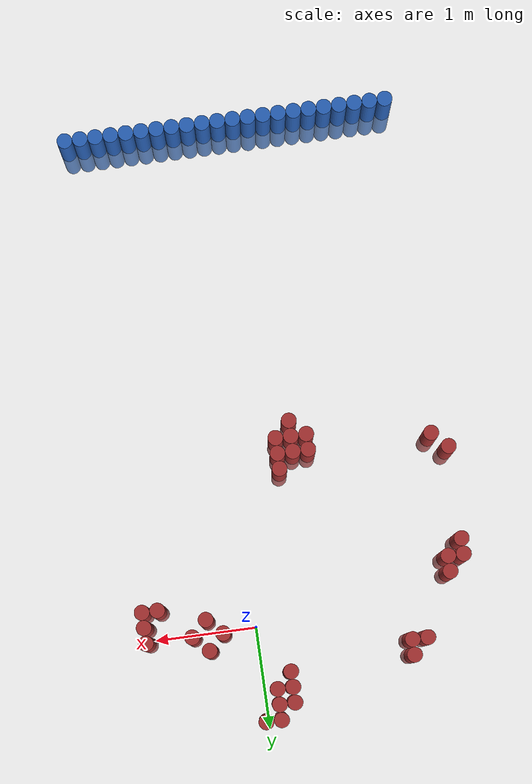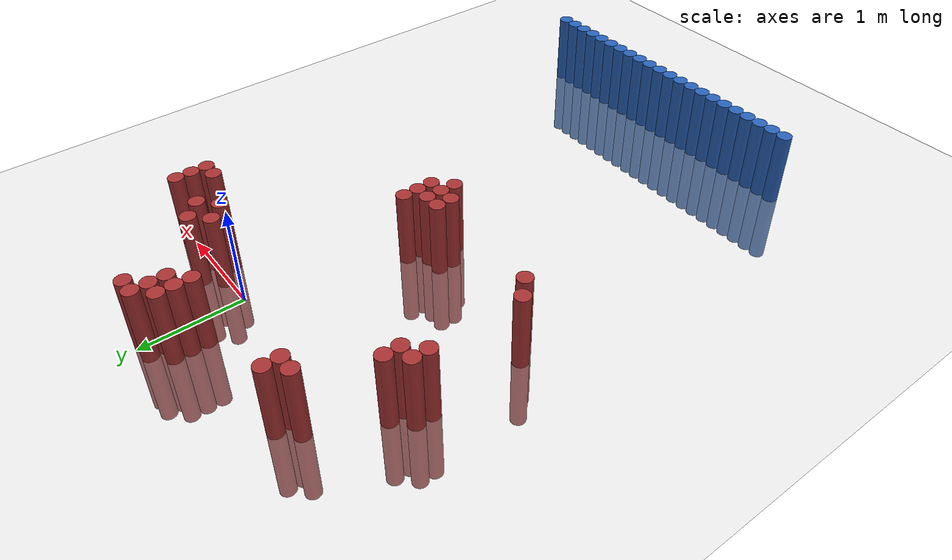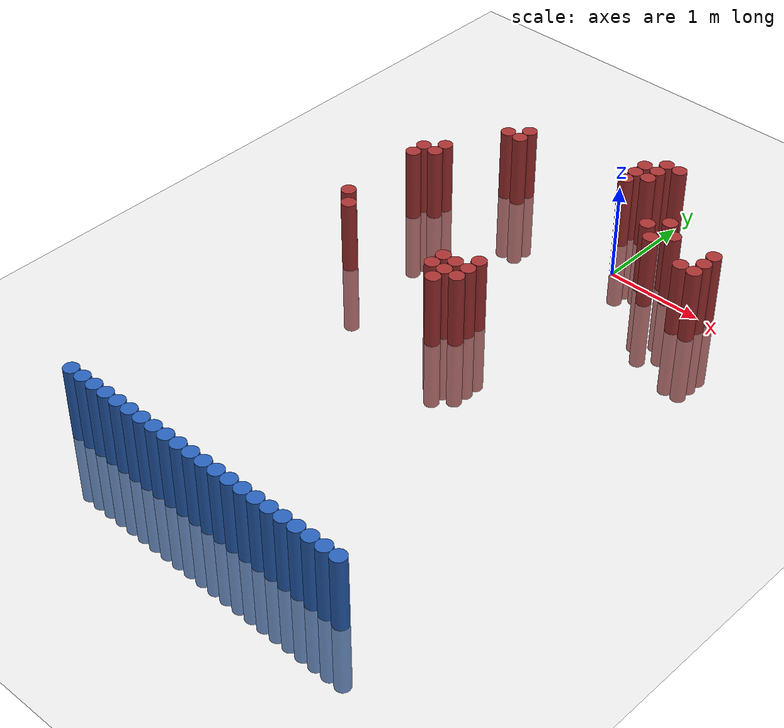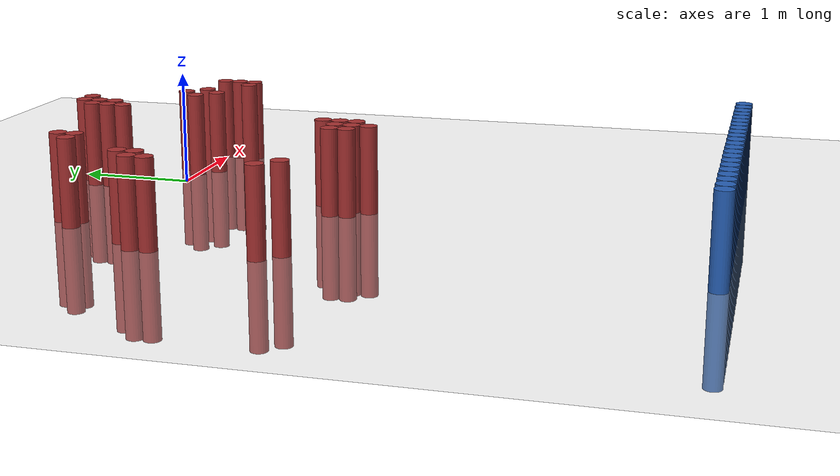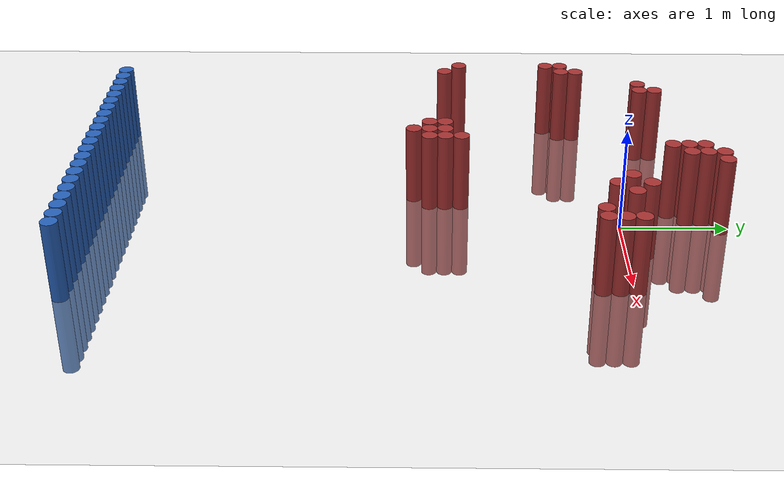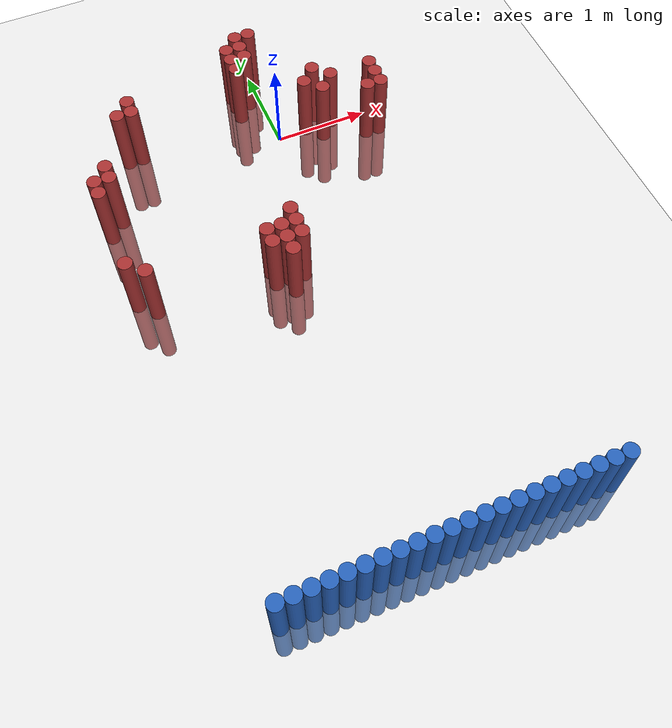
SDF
<sdf version="1.6">
 <world name="default">
  <model name="ground_plane">
   <static>1</static>
   <link name="link">
    <collision name="collision">
     <geometry><plane><normal>0 0 1</normal><size>100 100</size></plane></geometry>
     <surface><friction><ode><mu>100</mu><mu2>50</mu2></ode></friction></surface>
    </collision>
    <visual name="visual">
     <cast_shadows>0</cast_shadows>
     <geometry><plane><normal>0 0 1</normal><size>100 100</size></plane></geometry>
     <material>
      <script><uri>file://media/materials/scripts/gazebo.material</uri><name>Gazebo/Grey</name></script>
     </material>
    </visual>
   </link>
  </model>
  <model name="unit_cylinder_18">
   <static>1</static>
   <pose>1.225000 -4.925000 0.000000 0.000000 0.000000 0.000000</pose>
   <link name="link">
    <inertial>
     <mass>1</mass>
     <inertia><ixx>0.145833</ixx><ixy>0</ixy><ixz>0</ixz><iyy>0.145833</iyy><iyz>0</iyz><izz>0.125</izz></inertia>
    </inertial>
    <collision name="collision">
     <geometry><cylinder><radius>0.075000</radius><length>1.5</length></cylinder></geometry>
    </collision>
    <visual name="visual">
     <geometry><cylinder><radius>0.075000</radius><length>1.5</length></cylinder></geometry>
     <material>
      <ambient>0.152000 0.379000 0.720000 1</ambient>
      <diffuse>0.152000 0.379000 0.720000 1</diffuse>
     </material>
     <material>
      <script><name>Gazebo/Grey</name><uri>file://media/materials/scripts/gazebo.material</uri></script>
     </material>
    </visual>
   </link>
  </model>
  <model name="unit_cylinder_19">
   <static>1</static>
   <pose>1.075000 -4.925000 0.000000 0.000000 0.000000 0.000000</pose>
   <link name="link">
    <inertial>
     <mass>1</mass>
     <inertia><ixx>0.145833</ixx><ixy>0</ixy><ixz>0</ixz><iyy>0.145833</iyy><iyz>0</iyz><izz>0.125</izz></inertia>
    </inertial>
    <collision name="collision">
     <geometry><cylinder><radius>0.075000</radius><length>1.5</length></cylinder></geometry>
    </collision>
    <visual name="visual">
     <geometry><cylinder><radius>0.075000</radius><length>1.5</length></cylinder></geometry>
     <material>
      <ambient>0.152000 0.379000 0.720000 1</ambient>
      <diffuse>0.152000 0.379000 0.720000 1</diffuse>
     </material>
     <material>
      <script><name>Gazebo/Grey</name><uri>file://media/materials/scripts/gazebo.material</uri></script>
     </material>
    </visual>
   </link>
  </model>
  <model name="unit_cylinder_20">
   <static>1</static>
   <pose>0.925000 -4.925000 0.000000 0.000000 0.000000 0.000000</pose>
   <link name="link">
    <inertial>
     <mass>1</mass>
     <inertia><ixx>0.145833</ixx><ixy>0</ixy><ixz>0</ixz><iyy>0.145833</iyy><iyz>0</iyz><izz>0.125</izz></inertia>
    </inertial>
    <collision name="collision">
     <geometry><cylinder><radius>0.075000</radius><length>1.5</length></cylinder></geometry>
    </collision>
    <visual name="visual">
     <geometry><cylinder><radius>0.075000</radius><length>1.5</length></cylinder></geometry>
     <material>
      <ambient>0.152000 0.379000 0.720000 1</ambient>
      <diffuse>0.152000 0.379000 0.720000 1</diffuse>
     </material>
     <material>
      <script><name>Gazebo/Grey</name><uri>file://media/materials/scripts/gazebo.material</uri></script>
     </material>
    </visual>
   </link>
  </model>
  <model name="unit_cylinder_21">
   <static>1</static>
   <pose>0.775000 -4.925000 0.000000 0.000000 0.000000 0.000000</pose>
   <link name="link">
    <inertial>
     <mass>1</mass>
     <inertia><ixx>0.145833</ixx><ixy>0</ixy><ixz>0</ixz><iyy>0.145833</iyy><iyz>0</iyz><izz>0.125</izz></inertia>
    </inertial>
    <collision name="collision">
     <geometry><cylinder><radius>0.075000</radius><length>1.5</length></cylinder></geometry>
    </collision>
    <visual name="visual">
     <geometry><cylinder><radius>0.075000</radius><length>1.5</length></cylinder></geometry>
     <material>
      <ambient>0.152000 0.379000 0.720000 1</ambient>
      <diffuse>0.152000 0.379000 0.720000 1</diffuse>
     </material>
     <material>
      <script><name>Gazebo/Grey</name><uri>file://media/materials/scripts/gazebo.material</uri></script>
     </material>
    </visual>
   </link>
  </model>
  <model name="unit_cylinder_22">
   <static>1</static>
   <pose>0.625000 -4.925000 0.000000 0.000000 0.000000 0.000000</pose>
   <link name="link">
    <inertial>
     <mass>1</mass>
     <inertia><ixx>0.145833</ixx><ixy>0</ixy><ixz>0</ixz><iyy>0.145833</iyy><iyz>0</iyz><izz>0.125</izz></inertia>
    </inertial>
    <collision name="collision">
     <geometry><cylinder><radius>0.075000</radius><length>1.5</length></cylinder></geometry>
    </collision>
    <visual name="visual">
     <geometry><cylinder><radius>0.075000</radius><length>1.5</length></cylinder></geometry>
     <material>
      <ambient>0.152000 0.379000 0.720000 1</ambient>
      <diffuse>0.152000 0.379000 0.720000 1</diffuse>
     </material>
     <material>
      <script><name>Gazebo/Grey</name><uri>file://media/materials/scripts/gazebo.material</uri></script>
     </material>
    </visual>
   </link>
  </model>
  <model name="unit_cylinder_23">
   <static>1</static>
   <pose>0.475000 -4.925000 0.000000 0.000000 0.000000 0.000000</pose>
   <link name="link">
    <inertial>
     <mass>1</mass>
     <inertia><ixx>0.145833</ixx><ixy>0</ixy><ixz>0</ixz><iyy>0.145833</iyy><iyz>0</iyz><izz>0.125</izz></inertia>
    </inertial>
    <collision name="collision">
     <geometry><cylinder><radius>0.075000</radius><length>1.5</length></cylinder></geometry>
    </collision>
    <visual name="visual">
     <geometry><cylinder><radius>0.075000</radius><length>1.5</length></cylinder></geometry>
     <material>
      <ambient>0.152000 0.379000 0.720000 1</ambient>
      <diffuse>0.152000 0.379000 0.720000 1</diffuse>
     </material>
     <material>
      <script><name>Gazebo/Grey</name><uri>file://media/materials/scripts/gazebo.material</uri></script>
     </material>
    </visual>
   </link>
  </model>
  <model name="unit_cylinder_24">
   <static>1</static>
   <pose>0.325000 -4.925000 0.000000 0.000000 0.000000 0.000000</pose>
   <link name="link">
    <inertial>
     <mass>1</mass>
     <inertia><ixx>0.145833</ixx><ixy>0</ixy><ixz>0</ixz><iyy>0.145833</iyy><iyz>0</iyz><izz>0.125</izz></inertia>
    </inertial>
    <collision name="collision">
     <geometry><cylinder><radius>0.075000</radius><length>1.5</length></cylinder></geometry>
    </collision>
    <visual name="visual">
     <geometry><cylinder><radius>0.075000</radius><length>1.5</length></cylinder></geometry>
     <material>
      <ambient>0.152000 0.379000 0.720000 1</ambient>
      <diffuse>0.152000 0.379000 0.720000 1</diffuse>
     </material>
     <material>
      <script><name>Gazebo/Grey</name><uri>file://media/materials/scripts/gazebo.material</uri></script>
     </material>
    </visual>
   </link>
  </model>
  <model name="unit_cylinder_25">
   <static>1</static>
   <pose>0.175000 -4.925000 0.000000 0.000000 0.000000 0.000000</pose>
   <link name="link">
    <inertial>
     <mass>1</mass>
     <inertia><ixx>0.145833</ixx><ixy>0</ixy><ixz>0</ixz><iyy>0.145833</iyy><iyz>0</iyz><izz>0.125</izz></inertia>
    </inertial>
    <collision name="collision">
     <geometry><cylinder><radius>0.075000</radius><length>1.5</length></cylinder></geometry>
    </collision>
    <visual name="visual">
     <geometry><cylinder><radius>0.075000</radius><length>1.5</length></cylinder></geometry>
     <material>
      <ambient>0.152000 0.379000 0.720000 1</ambient>
      <diffuse>0.152000 0.379000 0.720000 1</diffuse>
     </material>
     <material>
      <script><name>Gazebo/Grey</name><uri>file://media/materials/scripts/gazebo.material</uri></script>
     </material>
    </visual>
   </link>
  </model>
  <model name="unit_cylinder_26">
   <static>1</static>
   <pose>0.025000 -4.925000 0.000000 0.000000 0.000000 0.000000</pose>
   <link name="link">
    <inertial>
     <mass>1</mass>
     <inertia><ixx>0.145833</ixx><ixy>0</ixy><ixz>0</ixz><iyy>0.145833</iyy><iyz>0</iyz><izz>0.125</izz></inertia>
    </inertial>
    <collision name="collision">
     <geometry><cylinder><radius>0.075000</radius><length>1.5</length></cylinder></geometry>
    </collision>
    <visual name="visual">
     <geometry><cylinder><radius>0.075000</radius><length>1.5</length></cylinder></geometry>
     <material>
      <ambient>0.152000 0.379000 0.720000 1</ambient>
      <diffuse>0.152000 0.379000 0.720000 1</diffuse>
     </material>
     <material>
      <script><name>Gazebo/Grey</name><uri>file://media/materials/scripts/gazebo.material</uri></script>
     </material>
    </visual>
   </link>
  </model>
  <model name="unit_cylinder_27">
   <static>1</static>
   <pose>-0.125000 -4.925000 0.000000 0.000000 0.000000 0.000000</pose>
   <link name="link">
    <inertial>
     <mass>1</mass>
     <inertia><ixx>0.145833</ixx><ixy>0</ixy><ixz>0</ixz><iyy>0.145833</iyy><iyz>0</iyz><izz>0.125</izz></inertia>
    </inertial>
    <collision name="collision">
     <geometry><cylinder><radius>0.075000</radius><length>1.5</length></cylinder></geometry>
    </collision>
    <visual name="visual">
     <geometry><cylinder><radius>0.075000</radius><length>1.5</length></cylinder></geometry>
     <material>
      <ambient>0.152000 0.379000 0.720000 1</ambient>
      <diffuse>0.152000 0.379000 0.720000 1</diffuse>
     </material>
     <material>
      <script><name>Gazebo/Grey</name><uri>file://media/materials/scripts/gazebo.material</uri></script>
     </material>
    </visual>
   </link>
  </model>
  <model name="unit_cylinder_28">
   <static>1</static>
   <pose>-0.275000 -4.925000 0.000000 0.000000 0.000000 0.000000</pose>
   <link name="link">
    <inertial>
     <mass>1</mass>
     <inertia><ixx>0.145833</ixx><ixy>0</ixy><ixz>0</ixz><iyy>0.145833</iyy><iyz>0</iyz><izz>0.125</izz></inertia>
    </inertial>
    <collision name="collision">
     <geometry><cylinder><radius>0.075000</radius><length>1.5</length></cylinder></geometry>
    </collision>
    <visual name="visual">
     <geometry><cylinder><radius>0.075000</radius><length>1.5</length></cylinder></geometry>
     <material>
      <ambient>0.152000 0.379000 0.720000 1</ambient>
      <diffuse>0.152000 0.379000 0.720000 1</diffuse>
     </material>
     <material>
      <script><name>Gazebo/Grey</name><uri>file://media/materials/scripts/gazebo.material</uri></script>
     </material>
    </visual>
   </link>
  </model>
  <model name="unit_cylinder_29">
   <static>1</static>
   <pose>-0.425000 -4.925000 0.000000 0.000000 0.000000 0.000000</pose>
   <link name="link">
    <inertial>
     <mass>1</mass>
     <inertia><ixx>0.145833</ixx><ixy>0</ixy><ixz>0</ixz><iyy>0.145833</iyy><iyz>0</iyz><izz>0.125</izz></inertia>
    </inertial>
    <collision name="collision">
     <geometry><cylinder><radius>0.075000</radius><length>1.5</length></cylinder></geometry>
    </collision>
    <visual name="visual">
     <geometry><cylinder><radius>0.075000</radius><length>1.5</length></cylinder></geometry>
     <material>
      <ambient>0.152000 0.379000 0.720000 1</ambient>
      <diffuse>0.152000 0.379000 0.720000 1</diffuse>
     </material>
     <material>
      <script><name>Gazebo/Grey</name><uri>file://media/materials/scripts/gazebo.material</uri></script>
     </material>
    </visual>
   </link>
  </model>
  <model name="unit_cylinder_30">
   <static>1</static>
   <pose>-0.575000 -4.925000 0.000000 0.000000 0.000000 0.000000</pose>
   <link name="link">
    <inertial>
     <mass>1</mass>
     <inertia><ixx>0.145833</ixx><ixy>0</ixy><ixz>0</ixz><iyy>0.145833</iyy><iyz>0</iyz><izz>0.125</izz></inertia>
    </inertial>
    <collision name="collision">
     <geometry><cylinder><radius>0.075000</radius><length>1.5</length></cylinder></geometry>
    </collision>
    <visual name="visual">
     <geometry><cylinder><radius>0.075000</radius><length>1.5</length></cylinder></geometry>
     <material>
      <ambient>0.152000 0.379000 0.720000 1</ambient>
      <diffuse>0.152000 0.379000 0.720000 1</diffuse>
     </material>
     <material>
      <script><name>Gazebo/Grey</name><uri>file://media/materials/scripts/gazebo.material</uri></script>
     </material>
    </visual>
   </link>
  </model>
  <model name="unit_cylinder_31">
   <static>1</static>
   <pose>-0.725000 -4.925000 0.000000 0.000000 0.000000 0.000000</pose>
   <link name="link">
    <inertial>
     <mass>1</mass>
     <inertia><ixx>0.145833</ixx><ixy>0</ixy><ixz>0</ixz><iyy>0.145833</iyy><iyz>0</iyz><izz>0.125</izz></inertia>
    </inertial>
    <collision name="collision">
     <geometry><cylinder><radius>0.075000</radius><length>1.5</length></cylinder></geometry>
    </collision>
    <visual name="visual">
     <geometry><cylinder><radius>0.075000</radius><length>1.5</length></cylinder></geometry>
     <material>
      <ambient>0.152000 0.379000 0.720000 1</ambient>
      <diffuse>0.152000 0.379000 0.720000 1</diffuse>
     </material>
     <material>
      <script><name>Gazebo/Grey</name><uri>file://media/materials/scripts/gazebo.material</uri></script>
     </material>
    </visual>
   </link>
  </model>
  <model name="unit_cylinder_32">
   <static>1</static>
   <pose>-0.875000 -4.925000 0.000000 0.000000 0.000000 0.000000</pose>
   <link name="link">
    <inertial>
     <mass>1</mass>
     <inertia><ixx>0.145833</ixx><ixy>0</ixy><ixz>0</ixz><iyy>0.145833</iyy><iyz>0</iyz><izz>0.125</izz></inertia>
    </inertial>
    <collision name="collision">
     <geometry><cylinder><radius>0.075000</radius><length>1.5</length></cylinder></geometry>
    </collision>
    <visual name="visual">
     <geometry><cylinder><radius>0.075000</radius><length>1.5</length></cylinder></geometry>
     <material>
      <ambient>0.152000 0.379000 0.720000 1</ambient>
      <diffuse>0.152000 0.379000 0.720000 1</diffuse>
     </material>
     <material>
      <script><name>Gazebo/Grey</name><uri>file://media/materials/scripts/gazebo.material</uri></script>
     </material>
    </visual>
   </link>
  </model>
  <model name="unit_cylinder_33">
   <static>1</static>
   <pose>-1.025000 -4.925000 0.000000 0.000000 0.000000 0.000000</pose>
   <link name="link">
    <inertial>
     <mass>1</mass>
     <inertia><ixx>0.145833</ixx><ixy>0</ixy><ixz>0</ixz><iyy>0.145833</iyy><iyz>0</iyz><izz>0.125</izz></inertia>
    </inertial>
    <collision name="collision">
     <geometry><cylinder><radius>0.075000</radius><length>1.5</length></cylinder></geometry>
    </collision>
    <visual name="visual">
     <geometry><cylinder><radius>0.075000</radius><length>1.5</length></cylinder></geometry>
     <material>
      <ambient>0.152000 0.379000 0.720000 1</ambient>
      <diffuse>0.152000 0.379000 0.720000 1</diffuse>
     </material>
     <material>
      <script><name>Gazebo/Grey</name><uri>file://media/materials/scripts/gazebo.material</uri></script>
     </material>
    </visual>
   </link>
  </model>
  <model name="unit_cylinder_34">
   <static>1</static>
   <pose>-1.175000 -4.925000 0.000000 0.000000 0.000000 0.000000</pose>
   <link name="link">
    <inertial>
     <mass>1</mass>
     <inertia><ixx>0.145833</ixx><ixy>0</ixy><ixz>0</ixz><iyy>0.145833</iyy><iyz>0</iyz><izz>0.125</izz></inertia>
    </inertial>
    <collision name="collision">
     <geometry><cylinder><radius>0.075000</radius><length>1.5</length></cylinder></geometry>
    </collision>
    <visual name="visual">
     <geometry><cylinder><radius>0.075000</radius><length>1.5</length></cylinder></geometry>
     <material>
      <ambient>0.152000 0.379000 0.720000 1</ambient>
      <diffuse>0.152000 0.379000 0.720000 1</diffuse>
     </material>
     <material>
      <script><name>Gazebo/Grey</name><uri>file://media/materials/scripts/gazebo.material</uri></script>
     </material>
    </visual>
   </link>
  </model>
  <model name="unit_cylinder_35">
   <static>1</static>
   <pose>-1.325000 -4.925000 0.000000 0.000000 0.000000 0.000000</pose>
   <link name="link">
    <inertial>
     <mass>1</mass>
     <inertia><ixx>0.145833</ixx><ixy>0</ixy><ixz>0</ixz><iyy>0.145833</iyy><iyz>0</iyz><izz>0.125</izz></inertia>
    </inertial>
    <collision name="collision">
     <geometry><cylinder><radius>0.075000</radius><length>1.5</length></cylinder></geometry>
    </collision>
    <visual name="visual">
     <geometry><cylinder><radius>0.075000</radius><length>1.5</length></cylinder></geometry>
     <material>
      <ambient>0.152000 0.379000 0.720000 1</ambient>
      <diffuse>0.152000 0.379000 0.720000 1</diffuse>
     </material>
     <material>
      <script><name>Gazebo/Grey</name><uri>file://media/materials/scripts/gazebo.material</uri></script>
     </material>
    </visual>
   </link>
  </model>
  <model name="unit_cylinder_36">
   <static>1</static>
   <pose>-1.475000 -4.925000 0.000000 0.000000 0.000000 0.000000</pose>
   <link name="link">
    <inertial>
     <mass>1</mass>
     <inertia><ixx>0.145833</ixx><ixy>0</ixy><ixz>0</ixz><iyy>0.145833</iyy><iyz>0</iyz><izz>0.125</izz></inertia>
    </inertial>
    <collision name="collision">
     <geometry><cylinder><radius>0.075000</radius><length>1.5</length></cylinder></geometry>
    </collision>
    <visual name="visual">
     <geometry><cylinder><radius>0.075000</radius><length>1.5</length></cylinder></geometry>
     <material>
      <ambient>0.152000 0.379000 0.720000 1</ambient>
      <diffuse>0.152000 0.379000 0.720000 1</diffuse>
     </material>
     <material>
      <script><name>Gazebo/Grey</name><uri>file://media/materials/scripts/gazebo.material</uri></script>
     </material>
    </visual>
   </link>
  </model>
  <model name="unit_cylinder_37">
   <static>1</static>
   <pose>-1.625000 -4.925000 0.000000 0.000000 0.000000 0.000000</pose>
   <link name="link">
    <inertial>
     <mass>1</mass>
     <inertia><ixx>0.145833</ixx><ixy>0</ixy><ixz>0</ixz><iyy>0.145833</iyy><iyz>0</iyz><izz>0.125</izz></inertia>
    </inertial>
    <collision name="collision">
     <geometry><cylinder><radius>0.075000</radius><length>1.5</length></cylinder></geometry>
    </collision>
    <visual name="visual">
     <geometry><cylinder><radius>0.075000</radius><length>1.5</length></cylinder></geometry>
     <material>
      <ambient>0.152000 0.379000 0.720000 1</ambient>
      <diffuse>0.152000 0.379000 0.720000 1</diffuse>
     </material>
     <material>
      <script><name>Gazebo/Grey</name><uri>file://media/materials/scripts/gazebo.material</uri></script>
     </material>
    </visual>
   </link>
  </model>
  <model name="unit_cylinder_38">
   <static>1</static>
   <pose>-1.775000 -4.925000 0.000000 0.000000 0.000000 0.000000</pose>
   <link name="link">
    <inertial>
     <mass>1</mass>
     <inertia><ixx>0.145833</ixx><ixy>0</ixy><ixz>0</ixz><iyy>0.145833</iyy><iyz>0</iyz><izz>0.125</izz></inertia>
    </inertial>
    <collision name="collision">
     <geometry><cylinder><radius>0.075000</radius><length>1.5</length></cylinder></geometry>
    </collision>
    <visual name="visual">
     <geometry><cylinder><radius>0.075000</radius><length>1.5</length></cylinder></geometry>
     <material>
      <ambient>0.152000 0.379000 0.720000 1</ambient>
      <diffuse>0.152000 0.379000 0.720000 1</diffuse>
     </material>
     <material>
      <script><name>Gazebo/Grey</name><uri>file://media/materials/scripts/gazebo.material</uri></script>
     </material>
    </visual>
   </link>
  </model>
  <model name="unit_cylinder_39">
   <static>1</static>
   <pose>-1.925000 -4.925000 0.000000 0.000000 0.000000 0.000000</pose>
   <link name="link">
    <inertial>
     <mass>1</mass>
     <inertia><ixx>0.145833</ixx><ixy>0</ixy><ixz>0</ixz><iyy>0.145833</iyy><iyz>0</iyz><izz>0.125</izz></inertia>
    </inertial>
    <collision name="collision">
     <geometry><cylinder><radius>0.075000</radius><length>1.5</length></cylinder></geometry>
    </collision>
    <visual name="visual">
     <geometry><cylinder><radius>0.075000</radius><length>1.5</length></cylinder></geometry>
     <material>
      <ambient>0.152000 0.379000 0.720000 1</ambient>
      <diffuse>0.152000 0.379000 0.720000 1</diffuse>
     </material>
     <material>
      <script><name>Gazebo/Grey</name><uri>file://media/materials/scripts/gazebo.material</uri></script>
     </material>
    </visual>
   </link>
  </model>
  <model name="unit_cylinder_318">
   <static>1</static>
   <pose>-2.075000 -1.475000 0.000000 0.000000 0.000000 0.000000</pose>
   <link name="link">
    <inertial>
     <mass>1</mass>
     <inertia><ixx>0.145833</ixx><ixy>0</ixy><ixz>0</ixz><iyy>0.145833</iyy><iyz>0</iyz><izz>0.125</izz></inertia>
    </inertial>
    <collision name="collision">
     <geometry><cylinder><radius>0.075000</radius><length>1.5</length></cylinder></geometry>
    </collision>
    <visual name="visual">
     <geometry><cylinder><radius>0.075000</radius><length>1.5</length></cylinder></geometry>
     <material>
      <ambient>0.648000 0.192000 0.192000 1</ambient>
      <diffuse>0.648000 0.192000 0.192000 1</diffuse>
     </material>
     <material>
      <script><name>Gazebo/Grey</name><uri>file://media/materials/scripts/gazebo.material</uri></script>
     </material>
    </visual>
   </link>
  </model>
  <model name="unit_cylinder_319">
   <static>1</static>
   <pose>-2.075000 -0.575000 0.000000 0.000000 0.000000 0.000000</pose>
   <link name="link">
    <inertial>
     <mass>1</mass>
     <inertia><ixx>0.145833</ixx><ixy>0</ixy><ixz>0</ixz><iyy>0.145833</iyy><iyz>0</iyz><izz>0.125</izz></inertia>
    </inertial>
    <collision name="collision">
     <geometry><cylinder><radius>0.075000</radius><length>1.5</length></cylinder></geometry>
    </collision>
    <visual name="visual">
     <geometry><cylinder><radius>0.075000</radius><length>1.5</length></cylinder></geometry>
     <material>
      <ambient>0.648000 0.192000 0.192000 1</ambient>
      <diffuse>0.648000 0.192000 0.192000 1</diffuse>
     </material>
     <material>
      <script><name>Gazebo/Grey</name><uri>file://media/materials/scripts/gazebo.material</uri></script>
     </material>
    </visual>
   </link>
  </model>
  <model name="unit_cylinder_320">
   <static>1</static>
   <pose>-2.075000 -0.425000 0.000000 0.000000 0.000000 0.000000</pose>
   <link name="link">
    <inertial>
     <mass>1</mass>
     <inertia><ixx>0.145833</ixx><ixy>0</ixy><ixz>0</ixz><iyy>0.145833</iyy><iyz>0</iyz><izz>0.125</izz></inertia>
    </inertial>
    <collision name="collision">
     <geometry><cylinder><radius>0.075000</radius><length>1.5</length></cylinder></geometry>
    </collision>
    <visual name="visual">
     <geometry><cylinder><radius>0.075000</radius><length>1.5</length></cylinder></geometry>
     <material>
      <ambient>0.648000 0.192000 0.192000 1</ambient>
      <diffuse>0.648000 0.192000 0.192000 1</diffuse>
     </material>
     <material>
      <script><name>Gazebo/Grey</name><uri>file://media/materials/scripts/gazebo.material</uri></script>
     </material>
    </visual>
   </link>
  </model>
  <model name="unit_cylinder_321">
   <static>1</static>
   <pose>-1.925000 -1.625000 0.000000 0.000000 0.000000 0.000000</pose>
   <link name="link">
    <inertial>
     <mass>1</mass>
     <inertia><ixx>0.145833</ixx><ixy>0</ixy><ixz>0</ixz><iyy>0.145833</iyy><iyz>0</iyz><izz>0.125</izz></inertia>
    </inertial>
    <collision name="collision">
     <geometry><cylinder><radius>0.075000</radius><length>1.5</length></cylinder></geometry>
    </collision>
    <visual name="visual">
     <geometry><cylinder><radius>0.075000</radius><length>1.5</length></cylinder></geometry>
     <material>
      <ambient>0.648000 0.192000 0.192000 1</ambient>
      <diffuse>0.648000 0.192000 0.192000 1</diffuse>
     </material>
     <material>
      <script><name>Gazebo/Grey</name><uri>file://media/materials/scripts/gazebo.material</uri></script>
     </material>
    </visual>
   </link>
  </model>
  <model name="unit_cylinder_322">
   <static>1</static>
   <pose>-1.925000 -0.425000 0.000000 0.000000 0.000000 0.000000</pose>
   <link name="link">
    <inertial>
     <mass>1</mass>
     <inertia><ixx>0.145833</ixx><ixy>0</ixy><ixz>0</ixz><iyy>0.145833</iyy><iyz>0</iyz><izz>0.125</izz></inertia>
    </inertial>
    <collision name="collision">
     <geometry><cylinder><radius>0.075000</radius><length>1.5</length></cylinder></geometry>
    </collision>
    <visual name="visual">
     <geometry><cylinder><radius>0.075000</radius><length>1.5</length></cylinder></geometry>
     <material>
      <ambient>0.648000 0.192000 0.192000 1</ambient>
      <diffuse>0.648000 0.192000 0.192000 1</diffuse>
     </material>
     <material>
      <script><name>Gazebo/Grey</name><uri>file://media/materials/scripts/gazebo.material</uri></script>
     </material>
    </visual>
   </link>
  </model>
  <model name="unit_cylinder_323">
   <static>1</static>
   <pose>-1.925000 -0.275000 0.000000 0.000000 0.000000 0.000000</pose>
   <link name="link">
    <inertial>
     <mass>1</mass>
     <inertia><ixx>0.145833</ixx><ixy>0</ixy><ixz>0</ixz><iyy>0.145833</iyy><iyz>0</iyz><izz>0.125</izz></inertia>
    </inertial>
    <collision name="collision">
     <geometry><cylinder><radius>0.075000</radius><length>1.5</length></cylinder></geometry>
    </collision>
    <visual name="visual">
     <geometry><cylinder><radius>0.075000</radius><length>1.5</length></cylinder></geometry>
     <material>
      <ambient>0.648000 0.192000 0.192000 1</ambient>
      <diffuse>0.648000 0.192000 0.192000 1</diffuse>
     </material>
     <material>
      <script><name>Gazebo/Grey</name><uri>file://media/materials/scripts/gazebo.material</uri></script>
     </material>
    </visual>
   </link>
  </model>
  <model name="unit_cylinder_324">
   <static>1</static>
   <pose>-1.625000 0.325000 0.000000 0.000000 0.000000 0.000000</pose>
   <link name="link">
    <inertial>
     <mass>1</mass>
     <inertia><ixx>0.145833</ixx><ixy>0</ixy><ixz>0</ixz><iyy>0.145833</iyy><iyz>0</iyz><izz>0.125</izz></inertia>
    </inertial>
    <collision name="collision">
     <geometry><cylinder><radius>0.075000</radius><length>1.5</length></cylinder></geometry>
    </collision>
    <visual name="visual">
     <geometry><cylinder><radius>0.075000</radius><length>1.5</length></cylinder></geometry>
     <material>
      <ambient>0.648000 0.192000 0.192000 1</ambient>
      <diffuse>0.648000 0.192000 0.192000 1</diffuse>
     </material>
     <material>
      <script><name>Gazebo/Grey</name><uri>file://media/materials/scripts/gazebo.material</uri></script>
     </material>
    </visual>
   </link>
  </model>
  <model name="unit_cylinder_325">
   <static>1</static>
   <pose>-1.475000 0.325000 0.000000 0.000000 0.000000 0.000000</pose>
   <link name="link">
    <inertial>
     <mass>1</mass>
     <inertia><ixx>0.145833</ixx><ixy>0</ixy><ixz>0</ixz><iyy>0.145833</iyy><iyz>0</iyz><izz>0.125</izz></inertia>
    </inertial>
    <collision name="collision">
     <geometry><cylinder><radius>0.075000</radius><length>1.5</length></cylinder></geometry>
    </collision>
    <visual name="visual">
     <geometry><cylinder><radius>0.075000</radius><length>1.5</length></cylinder></geometry>
     <material>
      <ambient>0.648000 0.192000 0.192000 1</ambient>
      <diffuse>0.648000 0.192000 0.192000 1</diffuse>
     </material>
     <material>
      <script><name>Gazebo/Grey</name><uri>file://media/materials/scripts/gazebo.material</uri></script>
     </material>
    </visual>
   </link>
  </model>
  <model name="unit_cylinder_326">
   <static>1</static>
   <pose>-1.475000 0.475000 0.000000 0.000000 0.000000 0.000000</pose>
   <link name="link">
    <inertial>
     <mass>1</mass>
     <inertia><ixx>0.145833</ixx><ixy>0</ixy><ixz>0</ixz><iyy>0.145833</iyy><iyz>0</iyz><izz>0.125</izz></inertia>
    </inertial>
    <collision name="collision">
     <geometry><cylinder><radius>0.075000</radius><length>1.5</length></cylinder></geometry>
    </collision>
    <visual name="visual">
     <geometry><cylinder><radius>0.075000</radius><length>1.5</length></cylinder></geometry>
     <material>
      <ambient>0.648000 0.192000 0.192000 1</ambient>
      <diffuse>0.648000 0.192000 0.192000 1</diffuse>
     </material>
     <material>
      <script><name>Gazebo/Grey</name><uri>file://media/materials/scripts/gazebo.material</uri></script>
     </material>
    </visual>
   </link>
  </model>
  <model name="unit_cylinder_331">
   <static>1</static>
   <pose>-0.725000 -1.775000 0.000000 0.000000 0.000000 0.000000</pose>
   <link name="link">
    <inertial>
     <mass>1</mass>
     <inertia><ixx>0.145833</ixx><ixy>0</ixy><ixz>0</ixz><iyy>0.145833</iyy><iyz>0</iyz><izz>0.125</izz></inertia>
    </inertial>
    <collision name="collision">
     <geometry><cylinder><radius>0.075000</radius><length>1.5</length></cylinder></geometry>
    </collision>
    <visual name="visual">
     <geometry><cylinder><radius>0.075000</radius><length>1.5</length></cylinder></geometry>
     <material>
      <ambient>0.648000 0.192000 0.192000 1</ambient>
      <diffuse>0.648000 0.192000 0.192000 1</diffuse>
     </material>
     <material>
      <script><name>Gazebo/Grey</name><uri>file://media/materials/scripts/gazebo.material</uri></script>
     </material>
    </visual>
   </link>
  </model>
  <model name="unit_cylinder_332">
   <static>1</static>
   <pose>-0.725000 -1.625000 0.000000 0.000000 0.000000 0.000000</pose>
   <link name="link">
    <inertial>
     <mass>1</mass>
     <inertia><ixx>0.145833</ixx><ixy>0</ixy><ixz>0</ixz><iyy>0.145833</iyy><iyz>0</iyz><izz>0.125</izz></inertia>
    </inertial>
    <collision name="collision">
     <geometry><cylinder><radius>0.075000</radius><length>1.5</length></cylinder></geometry>
    </collision>
    <visual name="visual">
     <geometry><cylinder><radius>0.075000</radius><length>1.5</length></cylinder></geometry>
     <material>
      <ambient>0.648000 0.192000 0.192000 1</ambient>
      <diffuse>0.648000 0.192000 0.192000 1</diffuse>
     </material>
     <material>
      <script><name>Gazebo/Grey</name><uri>file://media/materials/scripts/gazebo.material</uri></script>
     </material>
    </visual>
   </link>
  </model>
  <model name="unit_cylinder_334">
   <static>1</static>
   <pose>-0.575000 -1.925000 0.000000 0.000000 0.000000 0.000000</pose>
   <link name="link">
    <inertial>
     <mass>1</mass>
     <inertia><ixx>0.145833</ixx><ixy>0</ixy><ixz>0</ixz><iyy>0.145833</iyy><iyz>0</iyz><izz>0.125</izz></inertia>
    </inertial>
    <collision name="collision">
     <geometry><cylinder><radius>0.075000</radius><length>1.5</length></cylinder></geometry>
    </collision>
    <visual name="visual">
     <geometry><cylinder><radius>0.075000</radius><length>1.5</length></cylinder></geometry>
     <material>
      <ambient>0.648000 0.192000 0.192000 1</ambient>
      <diffuse>0.648000 0.192000 0.192000 1</diffuse>
     </material>
     <material>
      <script><name>Gazebo/Grey</name><uri>file://media/materials/scripts/gazebo.material</uri></script>
     </material>
    </visual>
   </link>
  </model>
  <model name="unit_cylinder_335">
   <static>1</static>
   <pose>-0.575000 -1.775000 0.000000 0.000000 0.000000 0.000000</pose>
   <link name="link">
    <inertial>
     <mass>1</mass>
     <inertia><ixx>0.145833</ixx><ixy>0</ixy><ixz>0</ixz><iyy>0.145833</iyy><iyz>0</iyz><izz>0.125</izz></inertia>
    </inertial>
    <collision name="collision">
     <geometry><cylinder><radius>0.075000</radius><length>1.5</length></cylinder></geometry>
    </collision>
    <visual name="visual">
     <geometry><cylinder><radius>0.075000</radius><length>1.5</length></cylinder></geometry>
     <material>
      <ambient>0.648000 0.192000 0.192000 1</ambient>
      <diffuse>0.648000 0.192000 0.192000 1</diffuse>
     </material>
     <material>
      <script><name>Gazebo/Grey</name><uri>file://media/materials/scripts/gazebo.material</uri></script>
     </material>
    </visual>
   </link>
  </model>
  <model name="unit_cylinder_336">
   <static>1</static>
   <pose>-0.575000 -1.625000 0.000000 0.000000 0.000000 0.000000</pose>
   <link name="link">
    <inertial>
     <mass>1</mass>
     <inertia><ixx>0.145833</ixx><ixy>0</ixy><ixz>0</ixz><iyy>0.145833</iyy><iyz>0</iyz><izz>0.125</izz></inertia>
    </inertial>
    <collision name="collision">
     <geometry><cylinder><radius>0.075000</radius><length>1.5</length></cylinder></geometry>
    </collision>
    <visual name="visual">
     <geometry><cylinder><radius>0.075000</radius><length>1.5</length></cylinder></geometry>
     <material>
      <ambient>0.648000 0.192000 0.192000 1</ambient>
      <diffuse>0.648000 0.192000 0.192000 1</diffuse>
     </material>
     <material>
      <script><name>Gazebo/Grey</name><uri>file://media/materials/scripts/gazebo.material</uri></script>
     </material>
    </visual>
   </link>
  </model>
  <model name="unit_cylinder_342">
   <static>1</static>
   <pose>-0.425000 -1.775000 0.000000 0.000000 0.000000 0.000000</pose>
   <link name="link">
    <inertial>
     <mass>1</mass>
     <inertia><ixx>0.145833</ixx><ixy>0</ixy><ixz>0</ixz><iyy>0.145833</iyy><iyz>0</iyz><izz>0.125</izz></inertia>
    </inertial>
    <collision name="collision">
     <geometry><cylinder><radius>0.075000</radius><length>1.5</length></cylinder></geometry>
    </collision>
    <visual name="visual">
     <geometry><cylinder><radius>0.075000</radius><length>1.5</length></cylinder></geometry>
     <material>
      <ambient>0.648000 0.192000 0.192000 1</ambient>
      <diffuse>0.648000 0.192000 0.192000 1</diffuse>
     </material>
     <material>
      <script><name>Gazebo/Grey</name><uri>file://media/materials/scripts/gazebo.material</uri></script>
     </material>
    </visual>
   </link>
  </model>
  <model name="unit_cylinder_343">
   <static>1</static>
   <pose>-0.425000 -1.625000 0.000000 0.000000 0.000000 0.000000</pose>
   <link name="link">
    <inertial>
     <mass>1</mass>
     <inertia><ixx>0.145833</ixx><ixy>0</ixy><ixz>0</ixz><iyy>0.145833</iyy><iyz>0</iyz><izz>0.125</izz></inertia>
    </inertial>
    <collision name="collision">
     <geometry><cylinder><radius>0.075000</radius><length>1.5</length></cylinder></geometry>
    </collision>
    <visual name="visual">
     <geometry><cylinder><radius>0.075000</radius><length>1.5</length></cylinder></geometry>
     <material>
      <ambient>0.648000 0.192000 0.192000 1</ambient>
      <diffuse>0.648000 0.192000 0.192000 1</diffuse>
     </material>
     <material>
      <script><name>Gazebo/Grey</name><uri>file://media/materials/scripts/gazebo.material</uri></script>
     </material>
    </visual>
   </link>
  </model>
  <model name="unit_cylinder_344">
   <static>1</static>
   <pose>-0.425000 -1.475000 0.000000 0.000000 0.000000 0.000000</pose>
   <link name="link">
    <inertial>
     <mass>1</mass>
     <inertia><ixx>0.145833</ixx><ixy>0</ixy><ixz>0</ixz><iyy>0.145833</iyy><iyz>0</iyz><izz>0.125</izz></inertia>
    </inertial>
    <collision name="collision">
     <geometry><cylinder><radius>0.075000</radius><length>1.5</length></cylinder></geometry>
    </collision>
    <visual name="visual">
     <geometry><cylinder><radius>0.075000</radius><length>1.5</length></cylinder></geometry>
     <material>
      <ambient>0.648000 0.192000 0.192000 1</ambient>
      <diffuse>0.648000 0.192000 0.192000 1</diffuse>
     </material>
     <material>
      <script><name>Gazebo/Grey</name><uri>file://media/materials/scripts/gazebo.material</uri></script>
     </material>
    </visual>
   </link>
  </model>
  <model name="unit_cylinder_350">
   <static>1</static>
   <pose>-0.275000 0.475000 0.000000 0.000000 0.000000 0.000000</pose>
   <link name="link">
    <inertial>
     <mass>1</mass>
     <inertia><ixx>0.145833</ixx><ixy>0</ixy><ixz>0</ixz><iyy>0.145833</iyy><iyz>0</iyz><izz>0.125</izz></inertia>
    </inertial>
    <collision name="collision">
     <geometry><cylinder><radius>0.075000</radius><length>1.5</length></cylinder></geometry>
    </collision>
    <visual name="visual">
     <geometry><cylinder><radius>0.075000</radius><length>1.5</length></cylinder></geometry>
     <material>
      <ambient>0.648000 0.192000 0.192000 1</ambient>
      <diffuse>0.648000 0.192000 0.192000 1</diffuse>
     </material>
     <material>
      <script><name>Gazebo/Grey</name><uri>file://media/materials/scripts/gazebo.material</uri></script>
     </material>
    </visual>
   </link>
  </model>
  <model name="unit_cylinder_351">
   <static>1</static>
   <pose>-0.275000 0.625000 0.000000 0.000000 0.000000 0.000000</pose>
   <link name="link">
    <inertial>
     <mass>1</mass>
     <inertia><ixx>0.145833</ixx><ixy>0</ixy><ixz>0</ixz><iyy>0.145833</iyy><iyz>0</iyz><izz>0.125</izz></inertia>
    </inertial>
    <collision name="collision">
     <geometry><cylinder><radius>0.075000</radius><length>1.5</length></cylinder></geometry>
    </collision>
    <visual name="visual">
     <geometry><cylinder><radius>0.075000</radius><length>1.5</length></cylinder></geometry>
     <material>
      <ambient>0.648000 0.192000 0.192000 1</ambient>
      <diffuse>0.648000 0.192000 0.192000 1</diffuse>
     </material>
     <material>
      <script><name>Gazebo/Grey</name><uri>file://media/materials/scripts/gazebo.material</uri></script>
     </material>
    </visual>
   </link>
  </model>
  <model name="unit_cylinder_352">
   <static>1</static>
   <pose>-0.275000 0.775000 0.000000 0.000000 0.000000 0.000000</pose>
   <link name="link">
    <inertial>
     <mass>1</mass>
     <inertia><ixx>0.145833</ixx><ixy>0</ixy><ixz>0</ixz><iyy>0.145833</iyy><iyz>0</iyz><izz>0.125</izz></inertia>
    </inertial>
    <collision name="collision">
     <geometry><cylinder><radius>0.075000</radius><length>1.5</length></cylinder></geometry>
    </collision>
    <visual name="visual">
     <geometry><cylinder><radius>0.075000</radius><length>1.5</length></cylinder></geometry>
     <material>
      <ambient>0.648000 0.192000 0.192000 1</ambient>
      <diffuse>0.648000 0.192000 0.192000 1</diffuse>
     </material>
     <material>
      <script><name>Gazebo/Grey</name><uri>file://media/materials/scripts/gazebo.material</uri></script>
     </material>
    </visual>
   </link>
  </model>
  <model name="unit_cylinder_356">
   <static>1</static>
   <pose>-0.125000 0.625000 0.000000 0.000000 0.000000 0.000000</pose>
   <link name="link">
    <inertial>
     <mass>1</mass>
     <inertia><ixx>0.145833</ixx><ixy>0</ixy><ixz>0</ixz><iyy>0.145833</iyy><iyz>0</iyz><izz>0.125</izz></inertia>
    </inertial>
    <collision name="collision">
     <geometry><cylinder><radius>0.075000</radius><length>1.5</length></cylinder></geometry>
    </collision>
    <visual name="visual">
     <geometry><cylinder><radius>0.075000</radius><length>1.5</length></cylinder></geometry>
     <material>
      <ambient>0.648000 0.192000 0.192000 1</ambient>
      <diffuse>0.648000 0.192000 0.192000 1</diffuse>
     </material>
     <material>
      <script><name>Gazebo/Grey</name><uri>file://media/materials/scripts/gazebo.material</uri></script>
     </material>
    </visual>
   </link>
  </model>
  <model name="unit_cylinder_357">
   <static>1</static>
   <pose>-0.125000 0.775000 0.000000 0.000000 0.000000 0.000000</pose>
   <link name="link">
    <inertial>
     <mass>1</mass>
     <inertia><ixx>0.145833</ixx><ixy>0</ixy><ixz>0</ixz><iyy>0.145833</iyy><iyz>0</iyz><izz>0.125</izz></inertia>
    </inertial>
    <collision name="collision">
     <geometry><cylinder><radius>0.075000</radius><length>1.5</length></cylinder></geometry>
    </collision>
    <visual name="visual">
     <geometry><cylinder><radius>0.075000</radius><length>1.5</length></cylinder></geometry>
     <material>
      <ambient>0.648000 0.192000 0.192000 1</ambient>
      <diffuse>0.648000 0.192000 0.192000 1</diffuse>
     </material>
     <material>
      <script><name>Gazebo/Grey</name><uri>file://media/materials/scripts/gazebo.material</uri></script>
     </material>
    </visual>
   </link>
  </model>
  <model name="unit_cylinder_358">
   <static>1</static>
   <pose>-0.125000 0.925000 0.000000 0.000000 0.000000 0.000000</pose>
   <link name="link">
    <inertial>
     <mass>1</mass>
     <inertia><ixx>0.145833</ixx><ixy>0</ixy><ixz>0</ixz><iyy>0.145833</iyy><iyz>0</iyz><izz>0.125</izz></inertia>
    </inertial>
    <collision name="collision">
     <geometry><cylinder><radius>0.075000</radius><length>1.5</length></cylinder></geometry>
    </collision>
    <visual name="visual">
     <geometry><cylinder><radius>0.075000</radius><length>1.5</length></cylinder></geometry>
     <material>
      <ambient>0.648000 0.192000 0.192000 1</ambient>
      <diffuse>0.648000 0.192000 0.192000 1</diffuse>
     </material>
     <material>
      <script><name>Gazebo/Grey</name><uri>file://media/materials/scripts/gazebo.material</uri></script>
     </material>
    </visual>
   </link>
  </model>
  <model name="unit_cylinder_364">
   <static>1</static>
   <pose>0.025000 0.925000 0.000000 0.000000 0.000000 0.000000</pose>
   <link name="link">
    <inertial>
     <mass>1</mass>
     <inertia><ixx>0.145833</ixx><ixy>0</ixy><ixz>0</ixz><iyy>0.145833</iyy><iyz>0</iyz><izz>0.125</izz></inertia>
    </inertial>
    <collision name="collision">
     <geometry><cylinder><radius>0.075000</radius><length>1.5</length></cylinder></geometry>
    </collision>
    <visual name="visual">
     <geometry><cylinder><radius>0.075000</radius><length>1.5</length></cylinder></geometry>
     <material>
      <ambient>0.648000 0.192000 0.192000 1</ambient>
      <diffuse>0.648000 0.192000 0.192000 1</diffuse>
     </material>
     <material>
      <script><name>Gazebo/Grey</name><uri>file://media/materials/scripts/gazebo.material</uri></script>
     </material>
    </visual>
   </link>
  </model>
  <model name="unit_cylinder_371">
   <static>1</static>
   <pose>0.325000 0.025000 0.000000 0.000000 0.000000 0.000000</pose>
   <link name="link">
    <inertial>
     <mass>1</mass>
     <inertia><ixx>0.145833</ixx><ixy>0</ixy><ixz>0</ixz><iyy>0.145833</iyy><iyz>0</iyz><izz>0.125</izz></inertia>
    </inertial>
    <collision name="collision">
     <geometry><cylinder><radius>0.075000</radius><length>1.5</length></cylinder></geometry>
    </collision>
    <visual name="visual">
     <geometry><cylinder><radius>0.075000</radius><length>1.5</length></cylinder></geometry>
     <material>
      <ambient>0.648000 0.192000 0.192000 1</ambient>
      <diffuse>0.648000 0.192000 0.192000 1</diffuse>
     </material>
     <material>
      <script><name>Gazebo/Grey</name><uri>file://media/materials/scripts/gazebo.material</uri></script>
     </material>
    </visual>
   </link>
  </model>
  <model name="unit_cylinder_378">
   <static>1</static>
   <pose>0.475000 -0.125000 0.000000 0.000000 0.000000 0.000000</pose>
   <link name="link">
    <inertial>
     <mass>1</mass>
     <inertia><ixx>0.145833</ixx><ixy>0</ixy><ixz>0</ixz><iyy>0.145833</iyy><iyz>0</iyz><izz>0.125</izz></inertia>
    </inertial>
    <collision name="collision">
     <geometry><cylinder><radius>0.075000</radius><length>1.5</length></cylinder></geometry>
    </collision>
    <visual name="visual">
     <geometry><cylinder><radius>0.075000</radius><length>1.5</length></cylinder></geometry>
     <material>
      <ambient>0.648000 0.192000 0.192000 1</ambient>
      <diffuse>0.648000 0.192000 0.192000 1</diffuse>
     </material>
     <material>
      <script><name>Gazebo/Grey</name><uri>file://media/materials/scripts/gazebo.material</uri></script>
     </material>
    </visual>
   </link>
  </model>
  <model name="unit_cylinder_379">
   <static>1</static>
   <pose>0.475000 0.175000 0.000000 0.000000 0.000000 0.000000</pose>
   <link name="link">
    <inertial>
     <mass>1</mass>
     <inertia><ixx>0.145833</ixx><ixy>0</ixy><ixz>0</ixz><iyy>0.145833</iyy><iyz>0</iyz><izz>0.125</izz></inertia>
    </inertial>
    <collision name="collision">
     <geometry><cylinder><radius>0.075000</radius><length>1.5</length></cylinder></geometry>
    </collision>
    <visual name="visual">
     <geometry><cylinder><radius>0.075000</radius><length>1.5</length></cylinder></geometry>
     <material>
      <ambient>0.648000 0.192000 0.192000 1</ambient>
      <diffuse>0.648000 0.192000 0.192000 1</diffuse>
     </material>
     <material>
      <script><name>Gazebo/Grey</name><uri>file://media/materials/scripts/gazebo.material</uri></script>
     </material>
    </visual>
   </link>
  </model>
  <model name="unit_cylinder_387">
   <static>1</static>
   <pose>0.625000 0.025000 0.000000 0.000000 0.000000 0.000000</pose>
   <link name="link">
    <inertial>
     <mass>1</mass>
     <inertia><ixx>0.145833</ixx><ixy>0</ixy><ixz>0</ixz><iyy>0.145833</iyy><iyz>0</iyz><izz>0.125</izz></inertia>
    </inertial>
    <collision name="collision">
     <geometry><cylinder><radius>0.075000</radius><length>1.5</length></cylinder></geometry>
    </collision>
    <visual name="visual">
     <geometry><cylinder><radius>0.075000</radius><length>1.5</length></cylinder></geometry>
     <material>
      <ambient>0.648000 0.192000 0.192000 1</ambient>
      <diffuse>0.648000 0.192000 0.192000 1</diffuse>
     </material>
     <material>
      <script><name>Gazebo/Grey</name><uri>file://media/materials/scripts/gazebo.material</uri></script>
     </material>
    </visual>
   </link>
  </model>
  <model name="unit_cylinder_398">
   <static>1</static>
   <pose>0.925000 -0.275000 0.000000 0.000000 0.000000 0.000000</pose>
   <link name="link">
    <inertial>
     <mass>1</mass>
     <inertia><ixx>0.145833</ixx><ixy>0</ixy><ixz>0</ixz><iyy>0.145833</iyy><iyz>0</iyz><izz>0.125</izz></inertia>
    </inertial>
    <collision name="collision">
     <geometry><cylinder><radius>0.075000</radius><length>1.5</length></cylinder></geometry>
    </collision>
    <visual name="visual">
     <geometry><cylinder><radius>0.075000</radius><length>1.5</length></cylinder></geometry>
     <material>
      <ambient>0.648000 0.192000 0.192000 1</ambient>
      <diffuse>0.648000 0.192000 0.192000 1</diffuse>
     </material>
     <material>
      <script><name>Gazebo/Grey</name><uri>file://media/materials/scripts/gazebo.material</uri></script>
     </material>
    </visual>
   </link>
  </model>
  <model name="unit_cylinder_403">
   <static>1</static>
   <pose>1.075000 -0.275000 0.000000 0.000000 0.000000 0.000000</pose>
   <link name="link">
    <inertial>
     <mass>1</mass>
     <inertia><ixx>0.145833</ixx><ixy>0</ixy><ixz>0</ixz><iyy>0.145833</iyy><iyz>0</iyz><izz>0.125</izz></inertia>
    </inertial>
    <collision name="collision">
     <geometry><cylinder><radius>0.075000</radius><length>1.5</length></cylinder></geometry>
    </collision>
    <visual name="visual">
     <geometry><cylinder><radius>0.075000</radius><length>1.5</length></cylinder></geometry>
     <material>
      <ambient>0.648000 0.192000 0.192000 1</ambient>
      <diffuse>0.648000 0.192000 0.192000 1</diffuse>
     </material>
     <material>
      <script><name>Gazebo/Grey</name><uri>file://media/materials/scripts/gazebo.material</uri></script>
     </material>
    </visual>
   </link>
  </model>
  <model name="unit_cylinder_404">
   <static>1</static>
   <pose>1.075000 -0.125000 0.000000 0.000000 0.000000 0.000000</pose>
   <link name="link">
    <inertial>
     <mass>1</mass>
     <inertia><ixx>0.145833</ixx><ixy>0</ixy><ixz>0</ixz><iyy>0.145833</iyy><iyz>0</iyz><izz>0.125</izz></inertia>
    </inertial>
    <collision name="collision">
     <geometry><cylinder><radius>0.075000</radius><length>1.5</length></cylinder></geometry>
    </collision>
    <visual name="visual">
     <geometry><cylinder><radius>0.075000</radius><length>1.5</length></cylinder></geometry>
     <material>
      <ambient>0.648000 0.192000 0.192000 1</ambient>
      <diffuse>0.648000 0.192000 0.192000 1</diffuse>
     </material>
     <material>
      <script><name>Gazebo/Grey</name><uri>file://media/materials/scripts/gazebo.material</uri></script>
     </material>
    </visual>
   </link>
  </model>
  <model name="unit_cylinder_405">
   <static>1</static>
   <pose>1.075000 0.025000 0.000000 0.000000 0.000000 0.000000</pose>
   <link name="link">
    <inertial>
     <mass>1</mass>
     <inertia><ixx>0.145833</ixx><ixy>0</ixy><ixz>0</ixz><iyy>0.145833</iyy><iyz>0</iyz><izz>0.125</izz></inertia>
    </inertial>
    <collision name="collision">
     <geometry><cylinder><radius>0.075000</radius><length>1.5</length></cylinder></geometry>
    </collision>
    <visual name="visual">
     <geometry><cylinder><radius>0.075000</radius><length>1.5</length></cylinder></geometry>
     <material>
      <ambient>0.648000 0.192000 0.192000 1</ambient>
      <diffuse>0.648000 0.192000 0.192000 1</diffuse>
     </material>
     <material>
      <script><name>Gazebo/Grey</name><uri>file://media/materials/scripts/gazebo.material</uri></script>
     </material>
    </visual>
   </link>
  </model>
 </world>
</sdf>
